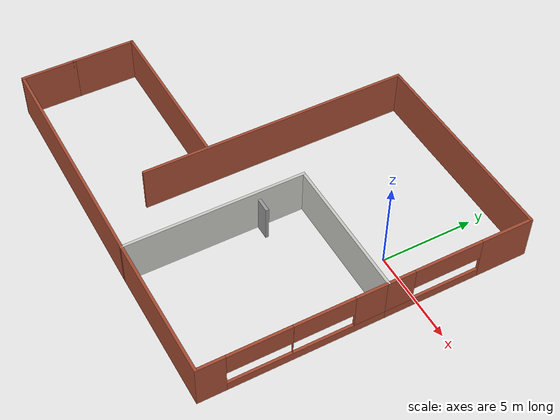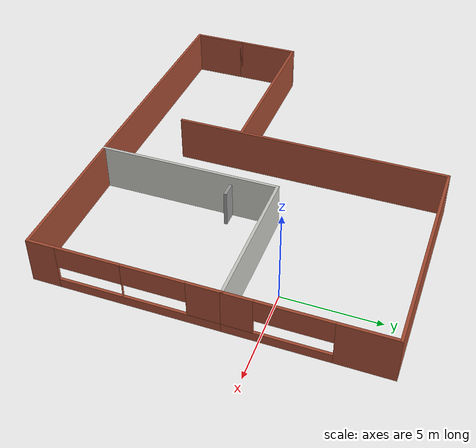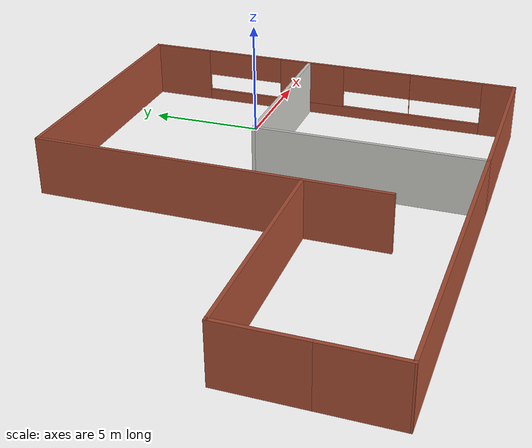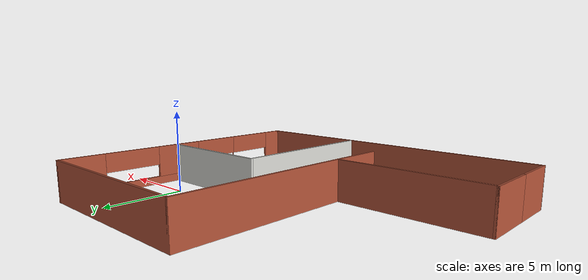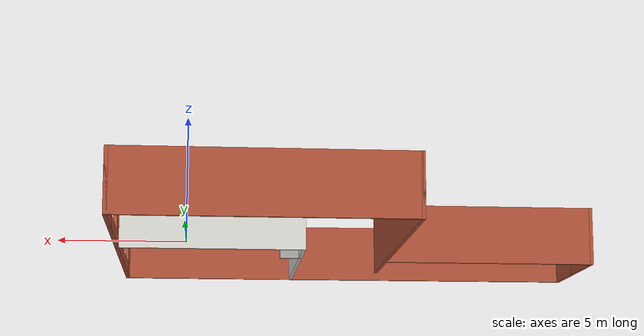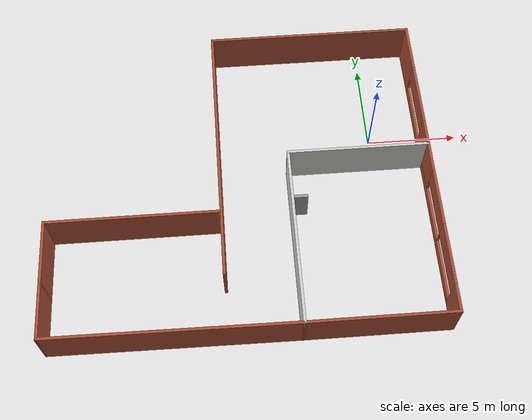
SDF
<?xml version='1.0'?>
<sdf version='1.6'>
  <model name='building-model'>
    <pose frame=''>-7.41019 -2.6033 0 0 -0 0</pose>
    <link name='Door_0'>
      <collision name='Door_0_Collision'>
        <geometry>
          <box>
            <size>0.9 0.17 2</size>
          </box>
        </geometry>
        <pose frame=''>0 0 1 0 -0 0</pose>
      </collision>
      <visual name='Door_0_Visual'>
        <pose frame=''>0 0 1 0 -0 0</pose>
        <geometry>
          <box>
            <size>0.9 0.17 2</size>
          </box>
        </geometry>
        <material>
          <script>
            <uri>file://media/materials/scripts/gazebo.material</uri>
            <name>Gazebo/Grey</name>
          </script>
        </material>
      </visual>
      <pose frame=''>3.04476 -1.59285 0 0 -0 0</pose>
    </link>
    <link name='Wall_1'>
      <collision name='Wall_1_Collision'>
        <geometry>
          <box>
            <size>14.75 0.15 2.5</size>
          </box>
        </geometry>
        <pose frame=''>0 0 1.25 0 -0 0</pose>
      </collision>
      <visual name='Wall_1_Visual'>
        <pose frame=''>0 0 1.25 0 -0 0</pose>
        <geometry>
          <box>
            <size>14.75 0.15 2.5</size>
          </box>
        </geometry>
        <material>
          <script>
            <uri>file://media/materials/scripts/gazebo.material</uri>
            <name>Gazebo/Bricks</name>
          </script>
          <ambient>1 1 1 1</ambient>
        </material>
        <meta>
          <layer>0</layer>
        </meta>
      </visual>
      <pose frame=''>-1.11923 1.42528 0 0 -0 1.5708</pose>
    </link>
    <link name='Wall_10'>
      <collision name='Wall_10_Collision'>
        <geometry>
          <box>
            <size>9.25 0.15 2.5</size>
          </box>
        </geometry>
        <pose frame=''>0 0 1.25 0 -0 0</pose>
      </collision>
      <visual name='Wall_10_Visual'>
        <pose frame=''>0 0 1.25 0 -0 0</pose>
        <geometry>
          <box>
            <size>9.25 0.15 2.5</size>
          </box>
        </geometry>
        <material>
          <script>
            <uri>file://media/materials/scripts/gazebo.material</uri>
            <name>Gazebo/Bricks</name>
          </script>
          <ambient>1 1 1 1</ambient>
        </material>
        <meta>
          <layer>0</layer>
        </meta>
      </visual>
      <pose frame=''>-5.6802 -2.42647 0 0 -0 0</pose>
    </link>
    <link name='Wall_18'>
      <collision name='Wall_18_Collision'>
        <geometry>
          <box>
            <size>3 0.15 2.5</size>
          </box>
        </geometry>
        <pose frame=''>0 0 1.25 0 -0 0</pose>
      </collision>
      <visual name='Wall_18_Visual'>
        <pose frame=''>0 0 1.25 0 -0 0</pose>
        <geometry>
          <box>
            <size>3 0.15 2.5</size>
          </box>
        </geometry>
        <material>
          <script>
            <uri>file://media/materials/scripts/gazebo.material</uri>
            <name>Gazebo/Bricks</name>
          </script>
          <ambient>1 1 1 1</ambient>
        </material>
        <meta>
          <layer>0</layer>
        </meta>
      </visual>
      <pose frame=''>-10.2302 -7.20148 0 0 0 -1.5708</pose>
    </link>
    <link name='Wall_19'>
      <collision name='Wall_19_Collision'>
        <geometry>
          <box>
            <size>13.0113 0.15 2.5</size>
          </box>
        </geometry>
        <pose frame=''>0 0 1.25 0 -0 0</pose>
      </collision>
      <visual name='Wall_19_Visual'>
        <pose frame=''>0 0 1.25 0 -0 0</pose>
        <geometry>
          <box>
            <size>13.0113 0.15 2.5</size>
          </box>
        </geometry>
        <material>
          <script>
            <uri>file://media/materials/scripts/gazebo.material</uri>
            <name>Gazebo/Bricks</name>
          </script>
          <ambient>1 1 1 1</ambient>
        </material>
        <meta>
          <layer>0</layer>
        </meta>
      </visual>
      <pose frame=''>-3.79971 -8.67559 0 0 0 -0.007638</pose>
    </link>
    <link name='Wall_2'>
      <collision name='Wall_2_Collision'>
        <geometry>
          <box>
            <size>11.5 0.15 2.5</size>
          </box>
        </geometry>
        <pose frame=''>0 0 1.25 0 -0 0</pose>
      </collision>
      <visual name='Wall_2_Visual'>
        <pose frame=''>0 0 1.25 0 -0 0</pose>
        <geometry>
          <box>
            <size>11.5 0.15 2.5</size>
          </box>
        </geometry>
        <material>
          <script>
            <uri>file://media/materials/scripts/gazebo.material</uri>
            <name>Gazebo/Bricks</name>
          </script>
          <ambient>1 1 1 1</ambient>
        </material>
        <meta>
          <layer>0</layer>
        </meta>
      </visual>
      <pose frame=''>4.55577 8.72528 0 0 -0 0</pose>
    </link>
    <link name='Wall_3'>
      <pose frame=''>10.2308 4.80028 0 0 0 -1.5708</pose>
      <visual name='Wall_3_Visual_0'>
        <pose frame=''>-2.58365 0 1.25 0 -0 0</pose>
        <geometry>
          <box>
            <size>2.8327 0.15 2.5</size>
          </box>
        </geometry>
        <material>
          <script>
            <uri>file://media/materials/scripts/gazebo.material</uri>
            <name>Gazebo/Bricks</name>
          </script>
          <ambient>1 1 1 1</ambient>
        </material>
        <meta>
          <layer>0</layer>
        </meta>
      </visual>
      <collision name='Wall_3_Collision_0'>
        <geometry>
          <box>
            <size>2.8327 0.15 2.5</size>
          </box>
        </geometry>
        <pose frame=''>-2.58365 0 1.25 0 -0 0</pose>
      </collision>
      <visual name='Wall_3_Visual_1'>
        <pose frame=''>1.41635 0 0.25 0 -0 0</pose>
        <geometry>
          <box>
            <size>5.1673 0.15 0.5</size>
          </box>
        </geometry>
        <material>
          <script>
            <uri>file://media/materials/scripts/gazebo.material</uri>
            <name>Gazebo/Bricks</name>
          </script>
          <ambient>1 1 1 1</ambient>
        </material>
        <meta>
          <layer>0</layer>
        </meta>
      </visual>
      <collision name='Wall_3_Collision_1'>
        <geometry>
          <box>
            <size>5.1673 0.15 0.5</size>
          </box>
        </geometry>
        <pose frame=''>1.41635 0 0.25 0 -0 0</pose>
      </collision>
      <visual name='Wall_3_Visual_2'>
        <pose frame=''>3.24442 0 1.5 0 -0 0</pose>
        <geometry>
          <box>
            <size>1.51117 0.15 2</size>
          </box>
        </geometry>
        <material>
          <script>
            <uri>file://media/materials/scripts/gazebo.material</uri>
            <name>Gazebo/Bricks</name>
          </script>
          <ambient>1 1 1 1</ambient>
        </material>
        <meta>
          <layer>0</layer>
        </meta>
      </visual>
      <collision name='Wall_3_Collision_2'>
        <geometry>
          <box>
            <size>1.51117 0.15 2</size>
          </box>
        </geometry>
        <pose frame=''>3.24442 0 1.5 0 -0 0</pose>
      </collision>
      <visual name='Wall_3_Visual_3'>
        <pose frame=''>0.660769 0 1.9 0 -0 0</pose>
        <geometry>
          <box>
            <size>3.65613 0.15 1.2</size>
          </box>
        </geometry>
        <material>
          <script>
            <uri>file://media/materials/scripts/gazebo.material</uri>
            <name>Gazebo/Bricks</name>
          </script>
          <ambient>1 1 1 1</ambient>
        </material>
        <meta>
          <layer>0</layer>
        </meta>
      </visual>
      <collision name='Wall_3_Collision_3'>
        <geometry>
          <box>
            <size>3.65613 0.15 1.2</size>
          </box>
        </geometry>
        <pose frame=''>0.660769 0 1.9 0 -0 0</pose>
      </collision>
    </link>
    <link name='Wall_4'>
      <collision name='Wall_4_Collision'>
        <geometry>
          <box>
            <size>7.75 0.15 2.5</size>
          </box>
        </geometry>
        <pose frame=''>0 0 1.25 0 -0 0</pose>
      </collision>
      <visual name='Wall_4_Visual'>
        <pose frame=''>0 0 1.25 0 -0 0</pose>
        <geometry>
          <box>
            <size>7.75 0.15 2.5</size>
          </box>
        </geometry>
        <material>
          <script>
            <uri>file://media/materials/scripts/gazebo.material</uri>
            <name>Gazebo/CeilingTiled</name>
          </script>
          <ambient>1 1 1 1</ambient>
        </material>
        <meta>
          <layer>0</layer>
        </meta>
      </visual>
      <pose frame=''>6.43077 0.875285 0 0 -0 3.14159</pose>
    </link>
    <link name='Wall_5'>
      <collision name='Wall_5_Collision'>
        <geometry>
          <box>
            <size>9.75 0.15 2.5</size>
          </box>
        </geometry>
        <pose frame=''>0 0 1.25 0 -0 0</pose>
      </collision>
      <visual name='Wall_5_Visual'>
        <pose frame=''>0 0 1.25 0 -0 0</pose>
        <geometry>
          <box>
            <size>9.75 0.15 2.5</size>
          </box>
        </geometry>
        <material>
          <script>
            <uri>file://media/materials/scripts/gazebo.material</uri>
            <name>Gazebo/CeilingTiled</name>
          </script>
          <ambient>1 1 1 1</ambient>
        </material>
        <meta>
          <layer>0</layer>
        </meta>
      </visual>
      <pose frame=''>2.63077 -3.92471 0 0 0 -1.5708</pose>
    </link>
    <link name='Wall_6'>
      <collision name='Wall_6_Collision'>
        <geometry>
          <box>
            <size>7.75 0.15 2.5</size>
          </box>
        </geometry>
        <pose frame=''>0 0 1.25 0 -0 0</pose>
      </collision>
      <visual name='Wall_6_Visual'>
        <pose frame=''>0 0 1.25 0 -0 0</pose>
        <geometry>
          <box>
            <size>7.75 0.15 2.5</size>
          </box>
        </geometry>
        <material>
          <script>
            <uri>file://media/materials/scripts/gazebo.material</uri>
            <name>Gazebo/Bricks</name>
          </script>
          <ambient>1 1 1 1</ambient>
        </material>
        <meta>
          <layer>0</layer>
        </meta>
      </visual>
      <pose frame=''>6.43077 -8.72471 0 0 -0 0</pose>
    </link>
    <link name='Wall_7'>
      <pose frame=''>10.2308 -3.92471 0 0 -0 1.5708</pose>
      <visual name='Wall_7_Visual_0'>
        <pose frame=''>-4.12656 0 1.25 0 -0 0</pose>
        <geometry>
          <box>
            <size>1.49688 0.15 2.5</size>
          </box>
        </geometry>
        <material>
          <script>
            <uri>file://media/materials/scripts/gazebo.material</uri>
            <name>Gazebo/Bricks</name>
          </script>
          <ambient>1 1 1 1</ambient>
        </material>
        <meta>
          <layer>0</layer>
        </meta>
      </visual>
      <collision name='Wall_7_Collision_0'>
        <geometry>
          <box>
            <size>1.49688 0.15 2.5</size>
          </box>
        </geometry>
        <pose frame=''>-4.12656 0 1.25 0 -0 0</pose>
      </collision>
      <visual name='Wall_7_Visual_1'>
        <pose frame=''>0.74844 0 0.25 0 -0 0</pose>
        <geometry>
          <box>
            <size>8.25312 0.15 0.5</size>
          </box>
        </geometry>
        <material>
          <script>
            <uri>file://media/materials/scripts/gazebo.material</uri>
            <name>Gazebo/Bricks</name>
          </script>
          <ambient>1 1 1 1</ambient>
        </material>
        <meta>
          <layer>0</layer>
        </meta>
      </visual>
      <collision name='Wall_7_Collision_1'>
        <geometry>
          <box>
            <size>8.25312 0.15 0.5</size>
          </box>
        </geometry>
        <pose frame=''>0.74844 0 0.25 0 -0 0</pose>
      </collision>
      <visual name='Wall_7_Visual_2'>
        <pose frame=''>-0.081765 0 1.5 0 -0 0</pose>
        <geometry>
          <box>
            <size>0.004543 0.15 2</size>
          </box>
        </geometry>
        <material>
          <script>
            <uri>file://media/materials/scripts/gazebo.material</uri>
            <name>Gazebo/Bricks</name>
          </script>
          <ambient>1 1 1 1</ambient>
        </material>
        <meta>
          <layer>0</layer>
        </meta>
      </visual>
      <collision name='Wall_7_Collision_2'>
        <geometry>
          <box>
            <size>0.004543 0.15 2</size>
          </box>
        </geometry>
        <pose frame=''>-0.081765 0 1.5 0 -0 0</pose>
      </collision>
      <visual name='Wall_7_Visual_3'>
        <pose frame=''>3.98445 0 1.5 0 -0 0</pose>
        <geometry>
          <box>
            <size>1.78109 0.15 2</size>
          </box>
        </geometry>
        <material>
          <script>
            <uri>file://media/materials/scripts/gazebo.material</uri>
            <name>Gazebo/Bricks</name>
          </script>
          <ambient>1 1 1 1</ambient>
        </material>
        <meta>
          <layer>0</layer>
        </meta>
      </visual>
      <collision name='Wall_7_Collision_3'>
        <geometry>
          <box>
            <size>1.78109 0.15 2</size>
          </box>
        </geometry>
        <pose frame=''>3.98445 0 1.5 0 -0 0</pose>
      </collision>
      <visual name='Wall_7_Visual_4'>
        <pose frame=''>-1.73108 0 1.9 0 -0 0</pose>
        <geometry>
          <box>
            <size>3.29408 0.15 1.2</size>
          </box>
        </geometry>
        <material>
          <script>
            <uri>file://media/materials/scripts/gazebo.material</uri>
            <name>Gazebo/Bricks</name>
          </script>
          <ambient>1 1 1 1</ambient>
        </material>
        <meta>
          <layer>0</layer>
        </meta>
      </visual>
      <collision name='Wall_7_Collision_4'>
        <geometry>
          <box>
            <size>3.29408 0.15 1.2</size>
          </box>
        </geometry>
        <pose frame=''>-1.73108 0 1.9 0 -0 0</pose>
      </collision>
      <visual name='Wall_7_Visual_5'>
        <pose frame=''>1.50721 0 1.9 0 -0 0</pose>
        <geometry>
          <box>
            <size>3.1734 0.15 1.2</size>
          </box>
        </geometry>
        <material>
          <script>
            <uri>file://media/materials/scripts/gazebo.material</uri>
            <name>Gazebo/Bricks</name>
          </script>
          <ambient>1 1 1 1</ambient>
        </material>
        <meta>
          <layer>0</layer>
        </meta>
      </visual>
      <collision name='Wall_7_Collision_5'>
        <geometry>
          <box>
            <size>3.1734 0.15 1.2</size>
          </box>
        </geometry>
        <pose frame=''>1.50721 0 1.9 0 -0 0</pose>
      </collision>
    </link>
    <link name='Wall_9'>
      <collision name='Wall_9_Collision'>
        <geometry>
          <box>
            <size>3.5 0.15 2.5</size>
          </box>
        </geometry>
        <pose frame=''>0 0 1.25 0 -0 0</pose>
      </collision>
      <visual name='Wall_9_Visual'>
        <pose frame=''>0 0 1.25 0 -0 0</pose>
        <geometry>
          <box>
            <size>3.5 0.15 2.5</size>
          </box>
        </geometry>
        <material>
          <script>
            <uri>file://media/materials/scripts/gazebo.material</uri>
            <name>Gazebo/Bricks</name>
          </script>
          <ambient>1 1 1 1</ambient>
        </material>
        <meta>
          <layer>0</layer>
        </meta>
      </visual>
      <pose frame=''>-10.2302 -4.10147 0 0 -0 1.5708</pose>
    </link>
    <static>1</static>
  </model>
</sdf>
